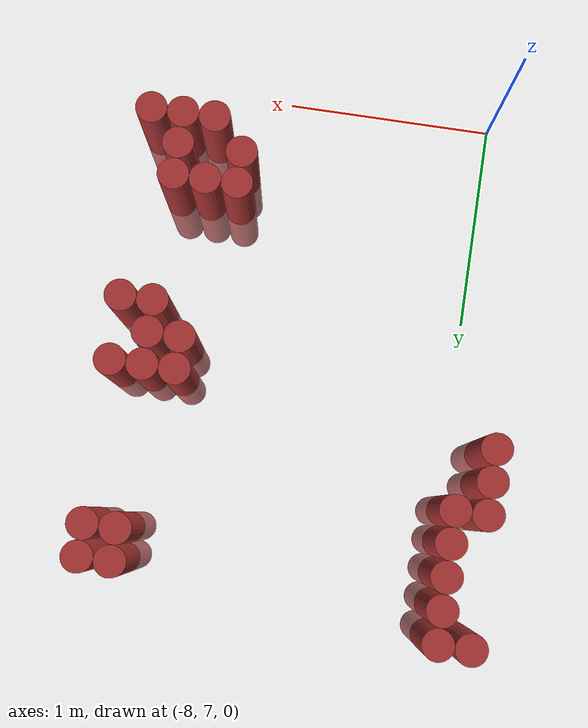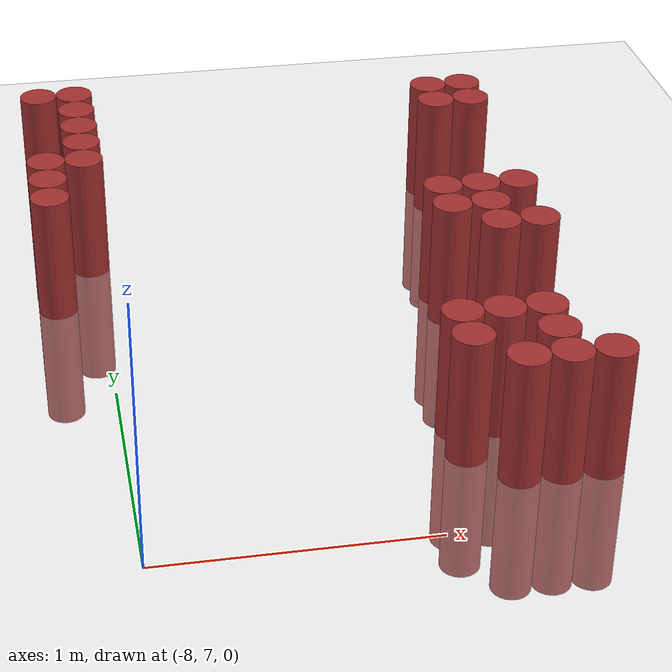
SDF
<sdf version="1.6">
 <world name="default">
  <model name="ground_plane">
   <static>1</static>
   <link name="link">
    <collision name="collision">
     <geometry><plane><normal>0 0 1</normal><size>100 100</size></plane></geometry>
     <surface><friction><ode><mu>100</mu><mu2>50</mu2></ode></friction></surface>
    </collision>
    <visual name="visual">
     <cast_shadows>0</cast_shadows>
     <geometry><plane><normal>0 0 1</normal><size>100 100</size></plane></geometry>
     <material>
      <script><uri>file://media/materials/scripts/gazebo.material</uri><name>Gazebo/Grey</name></script>
     </material>
    </visual>
   </link>
  </model>
  <model name="unit_cylinder_186">
   <static>1</static>
   <pose>-8.175000 8.625000 0.000000 0.000000 0.000000 0.000000</pose>
   <link name="link">
    <inertial>
     <mass>1</mass>
     <inertia><ixx>0.145833</ixx><ixy>0</ixy><ixz>0</ixz><iyy>0.145833</iyy><iyz>0</iyz><izz>0.125</izz></inertia>
    </inertial>
    <collision name="collision">
     <geometry><cylinder><radius>0.075000</radius><length>1</length></cylinder></geometry>
    </collision>
    <visual name="visual">
     <geometry><cylinder><radius>0.075000</radius><length>1</length></cylinder></geometry>
     <material>
      <ambient>0.648000 0.192000 0.192000 1</ambient>
      <diffuse>0.648000 0.192000 0.192000 1</diffuse>
     </material>
     <material>
      <script><name>Gazebo/Grey</name><uri>file://media/materials/scripts/gazebo.material</uri></script>
     </material>
    </visual>
   </link>
  </model>
  <model name="unit_cylinder_187">
   <static>1</static>
   <pose>-8.175000 8.775000 0.000000 0.000000 0.000000 0.000000</pose>
   <link name="link">
    <inertial>
     <mass>1</mass>
     <inertia><ixx>0.145833</ixx><ixy>0</ixy><ixz>0</ixz><iyy>0.145833</iyy><iyz>0</iyz><izz>0.125</izz></inertia>
    </inertial>
    <collision name="collision">
     <geometry><cylinder><radius>0.075000</radius><length>1</length></cylinder></geometry>
    </collision>
    <visual name="visual">
     <geometry><cylinder><radius>0.075000</radius><length>1</length></cylinder></geometry>
     <material>
      <ambient>0.648000 0.192000 0.192000 1</ambient>
      <diffuse>0.648000 0.192000 0.192000 1</diffuse>
     </material>
     <material>
      <script><name>Gazebo/Grey</name><uri>file://media/materials/scripts/gazebo.material</uri></script>
     </material>
    </visual>
   </link>
  </model>
  <model name="unit_cylinder_188">
   <static>1</static>
   <pose>-8.175000 8.925000 0.000000 0.000000 0.000000 0.000000</pose>
   <link name="link">
    <inertial>
     <mass>1</mass>
     <inertia><ixx>0.145833</ixx><ixy>0</ixy><ixz>0</ixz><iyy>0.145833</iyy><iyz>0</iyz><izz>0.125</izz></inertia>
    </inertial>
    <collision name="collision">
     <geometry><cylinder><radius>0.075000</radius><length>1</length></cylinder></geometry>
    </collision>
    <visual name="visual">
     <geometry><cylinder><radius>0.075000</radius><length>1</length></cylinder></geometry>
     <material>
      <ambient>0.648000 0.192000 0.192000 1</ambient>
      <diffuse>0.648000 0.192000 0.192000 1</diffuse>
     </material>
     <material>
      <script><name>Gazebo/Grey</name><uri>file://media/materials/scripts/gazebo.material</uri></script>
     </material>
    </visual>
   </link>
  </model>
  <model name="unit_cylinder_189">
   <static>1</static>
   <pose>-8.175000 9.525000 0.000000 0.000000 0.000000 0.000000</pose>
   <link name="link">
    <inertial>
     <mass>1</mass>
     <inertia><ixx>0.145833</ixx><ixy>0</ixy><ixz>0</ixz><iyy>0.145833</iyy><iyz>0</iyz><izz>0.125</izz></inertia>
    </inertial>
    <collision name="collision">
     <geometry><cylinder><radius>0.075000</radius><length>1</length></cylinder></geometry>
    </collision>
    <visual name="visual">
     <geometry><cylinder><radius>0.075000</radius><length>1</length></cylinder></geometry>
     <material>
      <ambient>0.648000 0.192000 0.192000 1</ambient>
      <diffuse>0.648000 0.192000 0.192000 1</diffuse>
     </material>
     <material>
      <script><name>Gazebo/Grey</name><uri>file://media/materials/scripts/gazebo.material</uri></script>
     </material>
    </visual>
   </link>
  </model>
  <model name="unit_cylinder_190">
   <static>1</static>
   <pose>-8.025000 8.925000 0.000000 0.000000 0.000000 0.000000</pose>
   <link name="link">
    <inertial>
     <mass>1</mass>
     <inertia><ixx>0.145833</ixx><ixy>0</ixy><ixz>0</ixz><iyy>0.145833</iyy><iyz>0</iyz><izz>0.125</izz></inertia>
    </inertial>
    <collision name="collision">
     <geometry><cylinder><radius>0.075000</radius><length>1</length></cylinder></geometry>
    </collision>
    <visual name="visual">
     <geometry><cylinder><radius>0.075000</radius><length>1</length></cylinder></geometry>
     <material>
      <ambient>0.648000 0.192000 0.192000 1</ambient>
      <diffuse>0.648000 0.192000 0.192000 1</diffuse>
     </material>
     <material>
      <script><name>Gazebo/Grey</name><uri>file://media/materials/scripts/gazebo.material</uri></script>
     </material>
    </visual>
   </link>
  </model>
  <model name="unit_cylinder_191">
   <static>1</static>
   <pose>-8.025000 9.075000 0.000000 0.000000 0.000000 0.000000</pose>
   <link name="link">
    <inertial>
     <mass>1</mass>
     <inertia><ixx>0.145833</ixx><ixy>0</ixy><ixz>0</ixz><iyy>0.145833</iyy><iyz>0</iyz><izz>0.125</izz></inertia>
    </inertial>
    <collision name="collision">
     <geometry><cylinder><radius>0.075000</radius><length>1</length></cylinder></geometry>
    </collision>
    <visual name="visual">
     <geometry><cylinder><radius>0.075000</radius><length>1</length></cylinder></geometry>
     <material>
      <ambient>0.648000 0.192000 0.192000 1</ambient>
      <diffuse>0.648000 0.192000 0.192000 1</diffuse>
     </material>
     <material>
      <script><name>Gazebo/Grey</name><uri>file://media/materials/scripts/gazebo.material</uri></script>
     </material>
    </visual>
   </link>
  </model>
  <model name="unit_cylinder_192">
   <static>1</static>
   <pose>-8.025000 9.225000 0.000000 0.000000 0.000000 0.000000</pose>
   <link name="link">
    <inertial>
     <mass>1</mass>
     <inertia><ixx>0.145833</ixx><ixy>0</ixy><ixz>0</ixz><iyy>0.145833</iyy><iyz>0</iyz><izz>0.125</izz></inertia>
    </inertial>
    <collision name="collision">
     <geometry><cylinder><radius>0.075000</radius><length>1</length></cylinder></geometry>
    </collision>
    <visual name="visual">
     <geometry><cylinder><radius>0.075000</radius><length>1</length></cylinder></geometry>
     <material>
      <ambient>0.648000 0.192000 0.192000 1</ambient>
      <diffuse>0.648000 0.192000 0.192000 1</diffuse>
     </material>
     <material>
      <script><name>Gazebo/Grey</name><uri>file://media/materials/scripts/gazebo.material</uri></script>
     </material>
    </visual>
   </link>
  </model>
  <model name="unit_cylinder_193">
   <static>1</static>
   <pose>-8.025000 9.375000 0.000000 0.000000 0.000000 0.000000</pose>
   <link name="link">
    <inertial>
     <mass>1</mass>
     <inertia><ixx>0.145833</ixx><ixy>0</ixy><ixz>0</ixz><iyy>0.145833</iyy><iyz>0</iyz><izz>0.125</izz></inertia>
    </inertial>
    <collision name="collision">
     <geometry><cylinder><radius>0.075000</radius><length>1</length></cylinder></geometry>
    </collision>
    <visual name="visual">
     <geometry><cylinder><radius>0.075000</radius><length>1</length></cylinder></geometry>
     <material>
      <ambient>0.648000 0.192000 0.192000 1</ambient>
      <diffuse>0.648000 0.192000 0.192000 1</diffuse>
     </material>
     <material>
      <script><name>Gazebo/Grey</name><uri>file://media/materials/scripts/gazebo.material</uri></script>
     </material>
    </visual>
   </link>
  </model>
  <model name="unit_cylinder_194">
   <static>1</static>
   <pose>-8.025000 9.525000 0.000000 0.000000 0.000000 0.000000</pose>
   <link name="link">
    <inertial>
     <mass>1</mass>
     <inertia><ixx>0.145833</ixx><ixy>0</ixy><ixz>0</ixz><iyy>0.145833</iyy><iyz>0</iyz><izz>0.125</izz></inertia>
    </inertial>
    <collision name="collision">
     <geometry><cylinder><radius>0.075000</radius><length>1</length></cylinder></geometry>
    </collision>
    <visual name="visual">
     <geometry><cylinder><radius>0.075000</radius><length>1</length></cylinder></geometry>
     <material>
      <ambient>0.648000 0.192000 0.192000 1</ambient>
      <diffuse>0.648000 0.192000 0.192000 1</diffuse>
     </material>
     <material>
      <script><name>Gazebo/Grey</name><uri>file://media/materials/scripts/gazebo.material</uri></script>
     </material>
    </visual>
   </link>
  </model>
  <model name="unit_cylinder_206">
   <static>1</static>
   <pose>-6.825000 7.425000 0.000000 0.000000 0.000000 0.000000</pose>
   <link name="link">
    <inertial>
     <mass>1</mass>
     <inertia><ixx>0.145833</ixx><ixy>0</ixy><ixz>0</ixz><iyy>0.145833</iyy><iyz>0</iyz><izz>0.125</izz></inertia>
    </inertial>
    <collision name="collision">
     <geometry><cylinder><radius>0.075000</radius><length>1</length></cylinder></geometry>
    </collision>
    <visual name="visual">
     <geometry><cylinder><radius>0.075000</radius><length>1</length></cylinder></geometry>
     <material>
      <ambient>0.648000 0.192000 0.192000 1</ambient>
      <diffuse>0.648000 0.192000 0.192000 1</diffuse>
     </material>
     <material>
      <script><name>Gazebo/Grey</name><uri>file://media/materials/scripts/gazebo.material</uri></script>
     </material>
    </visual>
   </link>
  </model>
  <model name="unit_cylinder_207">
   <static>1</static>
   <pose>-6.825000 7.575000 0.000000 0.000000 0.000000 0.000000</pose>
   <link name="link">
    <inertial>
     <mass>1</mass>
     <inertia><ixx>0.145833</ixx><ixy>0</ixy><ixz>0</ixz><iyy>0.145833</iyy><iyz>0</iyz><izz>0.125</izz></inertia>
    </inertial>
    <collision name="collision">
     <geometry><cylinder><radius>0.075000</radius><length>1</length></cylinder></geometry>
    </collision>
    <visual name="visual">
     <geometry><cylinder><radius>0.075000</radius><length>1</length></cylinder></geometry>
     <material>
      <ambient>0.648000 0.192000 0.192000 1</ambient>
      <diffuse>0.648000 0.192000 0.192000 1</diffuse>
     </material>
     <material>
      <script><name>Gazebo/Grey</name><uri>file://media/materials/scripts/gazebo.material</uri></script>
     </material>
    </visual>
   </link>
  </model>
  <model name="unit_cylinder_213">
   <static>1</static>
   <pose>-6.675000 7.275000 0.000000 0.000000 0.000000 0.000000</pose>
   <link name="link">
    <inertial>
     <mass>1</mass>
     <inertia><ixx>0.145833</ixx><ixy>0</ixy><ixz>0</ixz><iyy>0.145833</iyy><iyz>0</iyz><izz>0.125</izz></inertia>
    </inertial>
    <collision name="collision">
     <geometry><cylinder><radius>0.075000</radius><length>1</length></cylinder></geometry>
    </collision>
    <visual name="visual">
     <geometry><cylinder><radius>0.075000</radius><length>1</length></cylinder></geometry>
     <material>
      <ambient>0.648000 0.192000 0.192000 1</ambient>
      <diffuse>0.648000 0.192000 0.192000 1</diffuse>
     </material>
     <material>
      <script><name>Gazebo/Grey</name><uri>file://media/materials/scripts/gazebo.material</uri></script>
     </material>
    </visual>
   </link>
  </model>
  <model name="unit_cylinder_214">
   <static>1</static>
   <pose>-6.675000 7.575000 0.000000 0.000000 0.000000 0.000000</pose>
   <link name="link">
    <inertial>
     <mass>1</mass>
     <inertia><ixx>0.145833</ixx><ixy>0</ixy><ixz>0</ixz><iyy>0.145833</iyy><iyz>0</iyz><izz>0.125</izz></inertia>
    </inertial>
    <collision name="collision">
     <geometry><cylinder><radius>0.075000</radius><length>1</length></cylinder></geometry>
    </collision>
    <visual name="visual">
     <geometry><cylinder><radius>0.075000</radius><length>1</length></cylinder></geometry>
     <material>
      <ambient>0.648000 0.192000 0.192000 1</ambient>
      <diffuse>0.648000 0.192000 0.192000 1</diffuse>
     </material>
     <material>
      <script><name>Gazebo/Grey</name><uri>file://media/materials/scripts/gazebo.material</uri></script>
     </material>
    </visual>
   </link>
  </model>
  <model name="unit_cylinder_215">
   <static>1</static>
   <pose>-6.675000 8.325000 0.000000 0.000000 0.000000 0.000000</pose>
   <link name="link">
    <inertial>
     <mass>1</mass>
     <inertia><ixx>0.145833</ixx><ixy>0</ixy><ixz>0</ixz><iyy>0.145833</iyy><iyz>0</iyz><izz>0.125</izz></inertia>
    </inertial>
    <collision name="collision">
     <geometry><cylinder><radius>0.075000</radius><length>1</length></cylinder></geometry>
    </collision>
    <visual name="visual">
     <geometry><cylinder><radius>0.075000</radius><length>1</length></cylinder></geometry>
     <material>
      <ambient>0.648000 0.192000 0.192000 1</ambient>
      <diffuse>0.648000 0.192000 0.192000 1</diffuse>
     </material>
     <material>
      <script><name>Gazebo/Grey</name><uri>file://media/materials/scripts/gazebo.material</uri></script>
     </material>
    </visual>
   </link>
  </model>
  <model name="unit_cylinder_216">
   <static>1</static>
   <pose>-6.675000 8.475000 0.000000 0.000000 0.000000 0.000000</pose>
   <link name="link">
    <inertial>
     <mass>1</mass>
     <inertia><ixx>0.145833</ixx><ixy>0</ixy><ixz>0</ixz><iyy>0.145833</iyy><iyz>0</iyz><izz>0.125</izz></inertia>
    </inertial>
    <collision name="collision">
     <geometry><cylinder><radius>0.075000</radius><length>1</length></cylinder></geometry>
    </collision>
    <visual name="visual">
     <geometry><cylinder><radius>0.075000</radius><length>1</length></cylinder></geometry>
     <material>
      <ambient>0.648000 0.192000 0.192000 1</ambient>
      <diffuse>0.648000 0.192000 0.192000 1</diffuse>
     </material>
     <material>
      <script><name>Gazebo/Grey</name><uri>file://media/materials/scripts/gazebo.material</uri></script>
     </material>
    </visual>
   </link>
  </model>
  <model name="unit_cylinder_222">
   <static>1</static>
   <pose>-6.525000 7.275000 0.000000 0.000000 0.000000 0.000000</pose>
   <link name="link">
    <inertial>
     <mass>1</mass>
     <inertia><ixx>0.145833</ixx><ixy>0</ixy><ixz>0</ixz><iyy>0.145833</iyy><iyz>0</iyz><izz>0.125</izz></inertia>
    </inertial>
    <collision name="collision">
     <geometry><cylinder><radius>0.075000</radius><length>1</length></cylinder></geometry>
    </collision>
    <visual name="visual">
     <geometry><cylinder><radius>0.075000</radius><length>1</length></cylinder></geometry>
     <material>
      <ambient>0.648000 0.192000 0.192000 1</ambient>
      <diffuse>0.648000 0.192000 0.192000 1</diffuse>
     </material>
     <material>
      <script><name>Gazebo/Grey</name><uri>file://media/materials/scripts/gazebo.material</uri></script>
     </material>
    </visual>
   </link>
  </model>
  <model name="unit_cylinder_223">
   <static>1</static>
   <pose>-6.525000 7.425000 0.000000 0.000000 0.000000 0.000000</pose>
   <link name="link">
    <inertial>
     <mass>1</mass>
     <inertia><ixx>0.145833</ixx><ixy>0</ixy><ixz>0</ixz><iyy>0.145833</iyy><iyz>0</iyz><izz>0.125</izz></inertia>
    </inertial>
    <collision name="collision">
     <geometry><cylinder><radius>0.075000</radius><length>1</length></cylinder></geometry>
    </collision>
    <visual name="visual">
     <geometry><cylinder><radius>0.075000</radius><length>1</length></cylinder></geometry>
     <material>
      <ambient>0.648000 0.192000 0.192000 1</ambient>
      <diffuse>0.648000 0.192000 0.192000 1</diffuse>
     </material>
     <material>
      <script><name>Gazebo/Grey</name><uri>file://media/materials/scripts/gazebo.material</uri></script>
     </material>
    </visual>
   </link>
  </model>
  <model name="unit_cylinder_224">
   <static>1</static>
   <pose>-6.525000 7.575000 0.000000 0.000000 0.000000 0.000000</pose>
   <link name="link">
    <inertial>
     <mass>1</mass>
     <inertia><ixx>0.145833</ixx><ixy>0</ixy><ixz>0</ixz><iyy>0.145833</iyy><iyz>0</iyz><izz>0.125</izz></inertia>
    </inertial>
    <collision name="collision">
     <geometry><cylinder><radius>0.075000</radius><length>1</length></cylinder></geometry>
    </collision>
    <visual name="visual">
     <geometry><cylinder><radius>0.075000</radius><length>1</length></cylinder></geometry>
     <material>
      <ambient>0.648000 0.192000 0.192000 1</ambient>
      <diffuse>0.648000 0.192000 0.192000 1</diffuse>
     </material>
     <material>
      <script><name>Gazebo/Grey</name><uri>file://media/materials/scripts/gazebo.material</uri></script>
     </material>
    </visual>
   </link>
  </model>
  <model name="unit_cylinder_225">
   <static>1</static>
   <pose>-6.525000 8.175000 0.000000 0.000000 0.000000 0.000000</pose>
   <link name="link">
    <inertial>
     <mass>1</mass>
     <inertia><ixx>0.145833</ixx><ixy>0</ixy><ixz>0</ixz><iyy>0.145833</iyy><iyz>0</iyz><izz>0.125</izz></inertia>
    </inertial>
    <collision name="collision">
     <geometry><cylinder><radius>0.075000</radius><length>1</length></cylinder></geometry>
    </collision>
    <visual name="visual">
     <geometry><cylinder><radius>0.075000</radius><length>1</length></cylinder></geometry>
     <material>
      <ambient>0.648000 0.192000 0.192000 1</ambient>
      <diffuse>0.648000 0.192000 0.192000 1</diffuse>
     </material>
     <material>
      <script><name>Gazebo/Grey</name><uri>file://media/materials/scripts/gazebo.material</uri></script>
     </material>
    </visual>
   </link>
  </model>
  <model name="unit_cylinder_226">
   <static>1</static>
   <pose>-6.525000 8.325000 0.000000 0.000000 0.000000 0.000000</pose>
   <link name="link">
    <inertial>
     <mass>1</mass>
     <inertia><ixx>0.145833</ixx><ixy>0</ixy><ixz>0</ixz><iyy>0.145833</iyy><iyz>0</iyz><izz>0.125</izz></inertia>
    </inertial>
    <collision name="collision">
     <geometry><cylinder><radius>0.075000</radius><length>1</length></cylinder></geometry>
    </collision>
    <visual name="visual">
     <geometry><cylinder><radius>0.075000</radius><length>1</length></cylinder></geometry>
     <material>
      <ambient>0.648000 0.192000 0.192000 1</ambient>
      <diffuse>0.648000 0.192000 0.192000 1</diffuse>
     </material>
     <material>
      <script><name>Gazebo/Grey</name><uri>file://media/materials/scripts/gazebo.material</uri></script>
     </material>
    </visual>
   </link>
  </model>
  <model name="unit_cylinder_227">
   <static>1</static>
   <pose>-6.525000 8.475000 0.000000 0.000000 0.000000 0.000000</pose>
   <link name="link">
    <inertial>
     <mass>1</mass>
     <inertia><ixx>0.145833</ixx><ixy>0</ixy><ixz>0</ixz><iyy>0.145833</iyy><iyz>0</iyz><izz>0.125</izz></inertia>
    </inertial>
    <collision name="collision">
     <geometry><cylinder><radius>0.075000</radius><length>1</length></cylinder></geometry>
    </collision>
    <visual name="visual">
     <geometry><cylinder><radius>0.075000</radius><length>1</length></cylinder></geometry>
     <material>
      <ambient>0.648000 0.192000 0.192000 1</ambient>
      <diffuse>0.648000 0.192000 0.192000 1</diffuse>
     </material>
     <material>
      <script><name>Gazebo/Grey</name><uri>file://media/materials/scripts/gazebo.material</uri></script>
     </material>
    </visual>
   </link>
  </model>
  <model name="unit_cylinder_228">
   <static>1</static>
   <pose>-6.525000 9.225000 0.000000 0.000000 0.000000 0.000000</pose>
   <link name="link">
    <inertial>
     <mass>1</mass>
     <inertia><ixx>0.145833</ixx><ixy>0</ixy><ixz>0</ixz><iyy>0.145833</iyy><iyz>0</iyz><izz>0.125</izz></inertia>
    </inertial>
    <collision name="collision">
     <geometry><cylinder><radius>0.075000</radius><length>1</length></cylinder></geometry>
    </collision>
    <visual name="visual">
     <geometry><cylinder><radius>0.075000</radius><length>1</length></cylinder></geometry>
     <material>
      <ambient>0.648000 0.192000 0.192000 1</ambient>
      <diffuse>0.648000 0.192000 0.192000 1</diffuse>
     </material>
     <material>
      <script><name>Gazebo/Grey</name><uri>file://media/materials/scripts/gazebo.material</uri></script>
     </material>
    </visual>
   </link>
  </model>
  <model name="unit_cylinder_229">
   <static>1</static>
   <pose>-6.525000 9.375000 0.000000 0.000000 0.000000 0.000000</pose>
   <link name="link">
    <inertial>
     <mass>1</mass>
     <inertia><ixx>0.145833</ixx><ixy>0</ixy><ixz>0</ixz><iyy>0.145833</iyy><iyz>0</iyz><izz>0.125</izz></inertia>
    </inertial>
    <collision name="collision">
     <geometry><cylinder><radius>0.075000</radius><length>1</length></cylinder></geometry>
    </collision>
    <visual name="visual">
     <geometry><cylinder><radius>0.075000</radius><length>1</length></cylinder></geometry>
     <material>
      <ambient>0.648000 0.192000 0.192000 1</ambient>
      <diffuse>0.648000 0.192000 0.192000 1</diffuse>
     </material>
     <material>
      <script><name>Gazebo/Grey</name><uri>file://media/materials/scripts/gazebo.material</uri></script>
     </material>
    </visual>
   </link>
  </model>
  <model name="unit_cylinder_234">
   <static>1</static>
   <pose>-6.375000 7.275000 0.000000 0.000000 0.000000 0.000000</pose>
   <link name="link">
    <inertial>
     <mass>1</mass>
     <inertia><ixx>0.145833</ixx><ixy>0</ixy><ixz>0</ixz><iyy>0.145833</iyy><iyz>0</iyz><izz>0.125</izz></inertia>
    </inertial>
    <collision name="collision">
     <geometry><cylinder><radius>0.075000</radius><length>1</length></cylinder></geometry>
    </collision>
    <visual name="visual">
     <geometry><cylinder><radius>0.075000</radius><length>1</length></cylinder></geometry>
     <material>
      <ambient>0.648000 0.192000 0.192000 1</ambient>
      <diffuse>0.648000 0.192000 0.192000 1</diffuse>
     </material>
     <material>
      <script><name>Gazebo/Grey</name><uri>file://media/materials/scripts/gazebo.material</uri></script>
     </material>
    </visual>
   </link>
  </model>
  <model name="unit_cylinder_235">
   <static>1</static>
   <pose>-6.375000 8.175000 0.000000 0.000000 0.000000 0.000000</pose>
   <link name="link">
    <inertial>
     <mass>1</mass>
     <inertia><ixx>0.145833</ixx><ixy>0</ixy><ixz>0</ixz><iyy>0.145833</iyy><iyz>0</iyz><izz>0.125</izz></inertia>
    </inertial>
    <collision name="collision">
     <geometry><cylinder><radius>0.075000</radius><length>1</length></cylinder></geometry>
    </collision>
    <visual name="visual">
     <geometry><cylinder><radius>0.075000</radius><length>1</length></cylinder></geometry>
     <material>
      <ambient>0.648000 0.192000 0.192000 1</ambient>
      <diffuse>0.648000 0.192000 0.192000 1</diffuse>
     </material>
     <material>
      <script><name>Gazebo/Grey</name><uri>file://media/materials/scripts/gazebo.material</uri></script>
     </material>
    </visual>
   </link>
  </model>
  <model name="unit_cylinder_236">
   <static>1</static>
   <pose>-6.375000 8.475000 0.000000 0.000000 0.000000 0.000000</pose>
   <link name="link">
    <inertial>
     <mass>1</mass>
     <inertia><ixx>0.145833</ixx><ixy>0</ixy><ixz>0</ixz><iyy>0.145833</iyy><iyz>0</iyz><izz>0.125</izz></inertia>
    </inertial>
    <collision name="collision">
     <geometry><cylinder><radius>0.075000</radius><length>1</length></cylinder></geometry>
    </collision>
    <visual name="visual">
     <geometry><cylinder><radius>0.075000</radius><length>1</length></cylinder></geometry>
     <material>
      <ambient>0.648000 0.192000 0.192000 1</ambient>
      <diffuse>0.648000 0.192000 0.192000 1</diffuse>
     </material>
     <material>
      <script><name>Gazebo/Grey</name><uri>file://media/materials/scripts/gazebo.material</uri></script>
     </material>
    </visual>
   </link>
  </model>
  <model name="unit_cylinder_237">
   <static>1</static>
   <pose>-6.375000 9.225000 0.000000 0.000000 0.000000 0.000000</pose>
   <link name="link">
    <inertial>
     <mass>1</mass>
     <inertia><ixx>0.145833</ixx><ixy>0</ixy><ixz>0</ixz><iyy>0.145833</iyy><iyz>0</iyz><izz>0.125</izz></inertia>
    </inertial>
    <collision name="collision">
     <geometry><cylinder><radius>0.075000</radius><length>1</length></cylinder></geometry>
    </collision>
    <visual name="visual">
     <geometry><cylinder><radius>0.075000</radius><length>1</length></cylinder></geometry>
     <material>
      <ambient>0.648000 0.192000 0.192000 1</ambient>
      <diffuse>0.648000 0.192000 0.192000 1</diffuse>
     </material>
     <material>
      <script><name>Gazebo/Grey</name><uri>file://media/materials/scripts/gazebo.material</uri></script>
     </material>
    </visual>
   </link>
  </model>
  <model name="unit_cylinder_238">
   <static>1</static>
   <pose>-6.375000 9.375000 0.000000 0.000000 0.000000 0.000000</pose>
   <link name="link">
    <inertial>
     <mass>1</mass>
     <inertia><ixx>0.145833</ixx><ixy>0</ixy><ixz>0</ixz><iyy>0.145833</iyy><iyz>0</iyz><izz>0.125</izz></inertia>
    </inertial>
    <collision name="collision">
     <geometry><cylinder><radius>0.075000</radius><length>1</length></cylinder></geometry>
    </collision>
    <visual name="visual">
     <geometry><cylinder><radius>0.075000</radius><length>1</length></cylinder></geometry>
     <material>
      <ambient>0.648000 0.192000 0.192000 1</ambient>
      <diffuse>0.648000 0.192000 0.192000 1</diffuse>
     </material>
     <material>
      <script><name>Gazebo/Grey</name><uri>file://media/materials/scripts/gazebo.material</uri></script>
     </material>
    </visual>
   </link>
  </model>
 </world>
</sdf>
